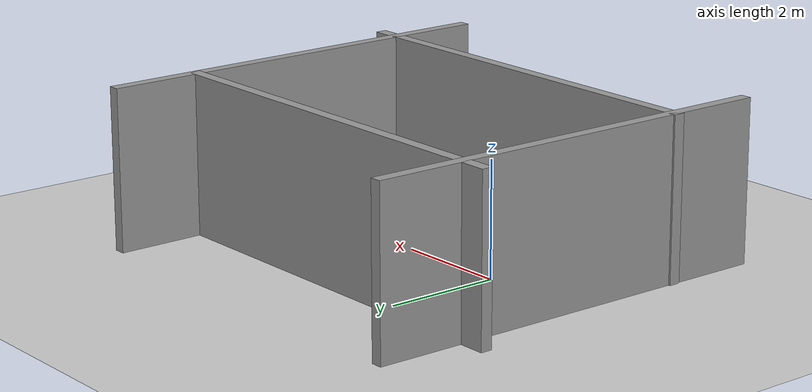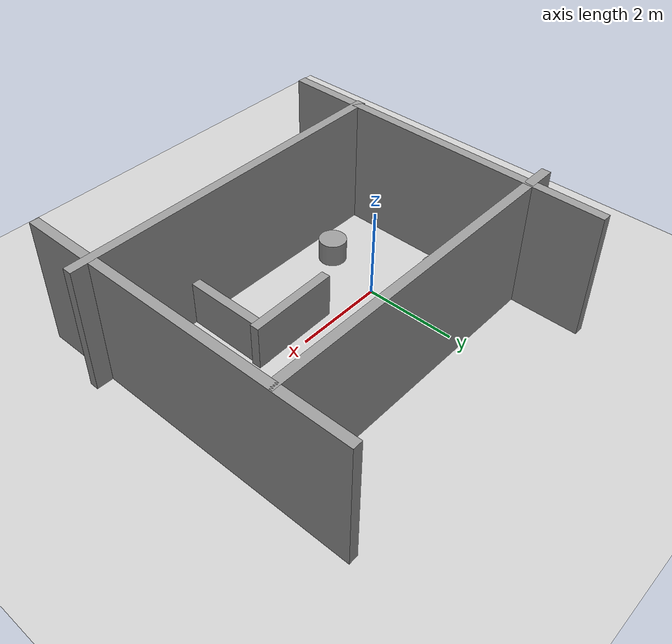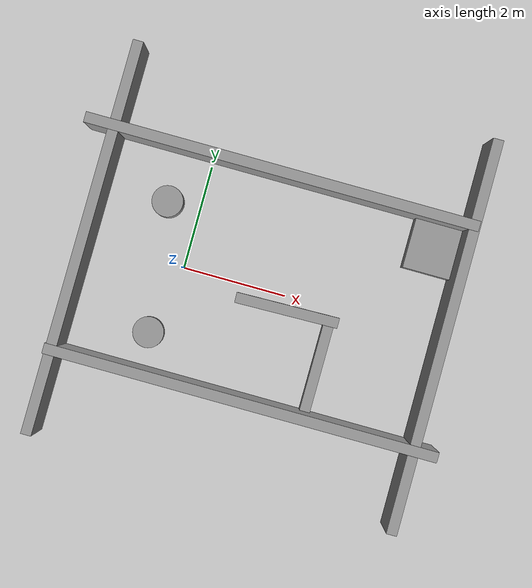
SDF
<sdf version="1.7">
 <world name="default">
  <light name="sun" type="directional">
   <pose>0 0 10 0 -0 0</pose>
   <diffuse>0.8 0.8 0.8 1</diffuse>
   <specular>0.2 0.2 0.2 1</specular>
   <attenuation>
    <range>1000</range>
    <constant>0.9</constant>
    <linear>0.01</linear>
    <quadratic>0.001</quadratic>
   </attenuation>
   <direction>-0.5 0.1 -0.9</direction>
   <spot><inner_angle>0</inner_angle><outer_angle>0</outer_angle><falloff>0</falloff></spot>
  </light>
  <model name="ground_plane">
   <static>1</static>
   <link name="link">
    <collision name="collision">
     <geometry><plane><normal>0 0 1</normal><size>100 100</size></plane></geometry>
     <surface>
      <contact><collide_bitmask>65535</collide_bitmask></contact>
      <friction><ode><mu>100</mu><mu2>50</mu2></ode></friction>
     </surface>
    </collision>
    <visual name="visual">
     <cast_shadows>0</cast_shadows>
     <geometry><plane><normal>0 0 1</normal><size>100 100</size></plane></geometry>
     <material>
      <script><uri>file://media/materials/scripts/gazebo.material</uri><name>Gazebo/Grey</name></script>
     </material>
    </visual>
   </link>
  </model>
  <gravity>0 0 -9.8</gravity>
  <magnetic_field>6e-06 2.3e-05 -4.2e-05</magnetic_field>
  <atmosphere type="adiabatic"/>
  <physics type="ode">
   <max_step_size>0.001</max_step_size>
   <real_time_factor>1</real_time_factor>
   <real_time_update_rate>1000</real_time_update_rate>
  </physics>
  <scene><ambient>0.4 0.4 0.4 1</ambient><background>0.7 0.7 0.7 1</background><shadows>1</shadows></scene>
  <spherical_coordinates>
   <surface_model>EARTH_WGS84</surface_model>
   <latitude_deg>0</latitude_deg>
   <longitude_deg>0</longitude_deg>
   <elevation>0</elevation>
   <heading_deg>0</heading_deg>
  </spherical_coordinates>
  <model name="grey_wall">
   <static>1</static>
   <link name="link">
    <pose>0 0 1.4 0 -0 0</pose>
    <collision name="collision"><geometry><box><size>7.5 0.2 2.8</size></box></geometry></collision>
    <visual name="visual">
     <cast_shadows>0</cast_shadows>
     <geometry><box><size>7.5 0.2 2.8</size></box></geometry>
     <material>
      <script>
       <uri>model://grey_wall/materials/scripts</uri>
       <uri>model://grey_wall/materials/textures</uri>
       <name>vrc/grey_wall</name>
      </script>
     </material>
    </visual>
   </link>
   <pose>1.72841 -2.10191 0 0 -0 0</pose>
  </model>
  <model name="grey_wall_0">
   <static>1</static>
   <link name="link">
    <pose>0 0 1.4 0 -0 0</pose>
    <collision name="collision"><geometry><box><size>7.5 0.2 2.8</size></box></geometry></collision>
    <visual name="visual">
     <cast_shadows>0</cast_shadows>
     <geometry><box><size>7.5 0.2 2.8</size></box></geometry>
     <material>
      <script>
       <uri>model://grey_wall/materials/scripts</uri>
       <uri>model://grey_wall/materials/textures</uri>
       <name>vrc/grey_wall</name>
      </script>
     </material>
    </visual>
   </link>
   <pose>1.32675 2.17894 0 0 -0 0</pose>
  </model>
  <model name="grey_wall_1">
   <static>1</static>
   <link name="link">
    <pose>0 0 1.4 0 -0 0</pose>
    <collision name="collision"><geometry><box><size>7.5 0.2 2.8</size></box></geometry></collision>
    <visual name="visual">
     <cast_shadows>0</cast_shadows>
     <geometry><box><size>7.5 0.2 2.8</size></box></geometry>
     <material>
      <script>
       <uri>model://grey_wall/materials/scripts</uri>
       <uri>model://grey_wall/materials/textures</uri>
       <name>vrc/grey_wall</name>
      </script>
     </material>
    </visual>
   </link>
   <pose>-1.87671 0.031138 0 0 0 -1.57759</pose>
  </model>
  <model name="grey_wall_2">
   <static>1</static>
   <link name="link">
    <pose>0 0 1.4 0 -0 0</pose>
    <collision name="collision"><geometry><box><size>7.5 0.2 2.8</size></box></geometry></collision>
    <visual name="visual">
     <cast_shadows>0</cast_shadows>
     <geometry><box><size>7.5 0.2 2.8</size></box></geometry>
     <material>
      <script>
       <uri>model://grey_wall/materials/scripts</uri>
       <uri>model://grey_wall/materials/textures</uri>
       <name>vrc/grey_wall</name>
      </script>
     </material>
    </visual>
   </link>
   <pose>5.01036 0.061297 0 0 0 -1.56431</pose>
  </model>
  <model name="unit_box">
   <pose>4.49071 1.62105 0.5 0 -0 0</pose>
   <link name="link">
    <inertial>
     <mass>1</mass>
     <inertia>
      <ixx>0.166667</ixx>
      <ixy>0</ixy>
      <ixz>0</ixz>
      <iyy>0.166667</iyy>
      <iyz>0</iyz>
      <izz>0.166667</izz>
     </inertia>
    </inertial>
    <collision name="collision"><geometry><box><size>1 1 1</size></box></geometry></collision>
    <visual name="visual">
     <geometry><box><size>1 1 1</size></box></geometry>
     <material>
      <script><name>Gazebo/Grey</name><uri>file://media/materials/scripts/gazebo.material</uri></script>
     </material>
    </visual>
   </link>
  </model>
  <model name="unit_box_0">
   <link name="link">
    <inertial>
     <mass>1</mass>
     <inertia>
      <ixx>0.166667</ixx>
      <ixy>0</ixy>
      <ixz>0</ixz>
      <iyy>0.166667</iyy>
      <iyz>0</iyz>
      <izz>0.166667</izz>
     </inertia>
    </inertial>
    <visual name="visual">
     <geometry><box><size>0.2 2 1</size></box></geometry>
     <material>
      <script><name>Gazebo/Grey</name><uri>file://media/materials/scripts/gazebo.material</uri></script>
      <shader type="pixel"><normal_map>__default__</normal_map></shader>
      <ambient>0.3 0.3 0.3 1</ambient>
      <diffuse>0.7 0.7 0.7 1</diffuse>
      <specular>0.01 0.01 0.01 1</specular>
      <emissive>0 0 0 1</emissive>
     </material>
    </visual>
    <collision name="collision">
     <geometry><box><size>0.2 2 1</size></box></geometry>
     <surface>
      <friction>
       <ode><mu>1</mu><mu2>1</mu2><fdir1>0 0 0</fdir1><slip1>0</slip1><slip2>0</slip2></ode>
       <torsional>
        <coefficient>1</coefficient>
        <patch_radius>0</patch_radius>
        <surface_radius>0</surface_radius>
        <use_patch_radius>1</use_patch_radius>
        <ode><slip>0</slip></ode>
       </torsional>
      </friction>
      <bounce><restitution_coefficient>0</restitution_coefficient><threshold>1e+06</threshold></bounce>
      <contact>
       <collide_without_contact>0</collide_without_contact>
       <collide_without_contact_bitmask>1</collide_without_contact_bitmask>
       <collide_bitmask>1</collide_bitmask>
       <ode>
        <soft_cfm>0</soft_cfm>
        <soft_erp>0.2</soft_erp>
        <kp>1e+13</kp>
        <kd>1</kd>
        <max_vel>0.01</max_vel>
        <min_depth>0</min_depth>
       </ode>
       <bullet>
        <split_impulse>1</split_impulse>
        <split_impulse_penetration_threshold>-0.01</split_impulse_penetration_threshold>
        <soft_cfm>0</soft_cfm>
        <soft_erp>0.2</soft_erp>
        <kp>1e+13</kp>
        <kd>1</kd>
       </bullet>
      </contact>
     </surface>
    </collision>
   </link>
   <static>0</static>
   <pose>2.93998 -1.15661 0.5 0 -0 0</pose>
  </model>
  <model name="unit_box_0_0">
   <link name="link">
    <inertial>
     <mass>1</mass>
     <inertia>
      <ixx>0.166667</ixx>
      <ixy>0</ixy>
      <ixz>0</ixz>
      <iyy>0.166667</iyy>
      <iyz>0</iyz>
      <izz>0.166667</izz>
     </inertia>
    </inertial>
    <visual name="visual">
     <geometry><box><size>0.2 2 1</size></box></geometry>
     <material>
      <script><name>Gazebo/Grey</name><uri>file://media/materials/scripts/gazebo.material</uri></script>
      <shader type="pixel"><normal_map>__default__</normal_map></shader>
      <ambient>0.3 0.3 0.3 1</ambient>
      <diffuse>0.7 0.7 0.7 1</diffuse>
      <specular>0.01 0.01 0.01 1</specular>
      <emissive>0 0 0 1</emissive>
     </material>
    </visual>
    <collision name="collision">
     <geometry><box><size>0.2 2 1</size></box></geometry>
     <surface>
      <friction>
       <ode><mu>1</mu><mu2>1</mu2><fdir1>0 0 0</fdir1><slip1>0</slip1><slip2>0</slip2></ode>
       <torsional>
        <coefficient>1</coefficient>
        <patch_radius>0</patch_radius>
        <surface_radius>0</surface_radius>
        <use_patch_radius>1</use_patch_radius>
        <ode><slip>0</slip></ode>
       </torsional>
      </friction>
      <bounce><restitution_coefficient>0</restitution_coefficient><threshold>1e+06</threshold></bounce>
      <contact>
       <collide_without_contact>0</collide_without_contact>
       <collide_without_contact_bitmask>1</collide_without_contact_bitmask>
       <collide_bitmask>1</collide_bitmask>
       <ode>
        <soft_cfm>0</soft_cfm>
        <soft_erp>0.2</soft_erp>
        <kp>1e+13</kp>
        <kd>1</kd>
        <max_vel>0.01</max_vel>
        <min_depth>0</min_depth>
       </ode>
       <bullet>
        <split_impulse>1</split_impulse>
        <split_impulse_penetration_threshold>-0.01</split_impulse_penetration_threshold>
        <soft_cfm>0</soft_cfm>
        <soft_erp>0.2</soft_erp>
        <kp>1e+13</kp>
        <kd>1</kd>
       </bullet>
      </contact>
     </surface>
    </collision>
   </link>
   <static>0</static>
   <pose>2.10891 -0.251127 0.536069 0 0 -1.54923</pose>
  </model>
  <model name="unit_cylinder">
   <link name="link">
    <inertial>
     <mass>1</mass>
     <inertia><ixx>0.145833</ixx><ixy>0</ixy><ixz>0</ixz><iyy>0.145833</iyy><iyz>0</iyz><izz>0.125</izz></inertia>
    </inertial>
    <visual name="visual">
     <geometry><cylinder><radius>0.3</radius><length>1</length></cylinder></geometry>
     <material>
      <script><name>Gazebo/Grey</name><uri>file://media/materials/scripts/gazebo.material</uri></script>
      <shader type="pixel"><normal_map>__default__</normal_map></shader>
      <ambient>0.3 0.3 0.3 1</ambient>
      <diffuse>0.7 0.7 0.7 1</diffuse>
      <specular>0.01 0.01 0.01 1</specular>
      <emissive>0 0 0 1</emissive>
     </material>
    </visual>
    <collision name="collision">
     <geometry><cylinder><radius>0.3</radius><length>1</length></cylinder></geometry>
     <surface>
      <friction>
       <ode><mu>1</mu><mu2>1</mu2><fdir1>0 0 0</fdir1><slip1>0</slip1><slip2>0</slip2></ode>
       <torsional>
        <coefficient>1</coefficient>
        <patch_radius>0</patch_radius>
        <surface_radius>0</surface_radius>
        <use_patch_radius>1</use_patch_radius>
        <ode><slip>0</slip></ode>
       </torsional>
      </friction>
      <bounce><restitution_coefficient>0</restitution_coefficient><threshold>1e+06</threshold></bounce>
      <contact>
       <collide_without_contact>0</collide_without_contact>
       <collide_without_contact_bitmask>1</collide_without_contact_bitmask>
       <collide_bitmask>1</collide_bitmask>
       <ode>
        <soft_cfm>0</soft_cfm>
        <soft_erp>0.2</soft_erp>
        <kp>1e+13</kp>
        <kd>1</kd>
        <max_vel>0.01</max_vel>
        <min_depth>0</min_depth>
       </ode>
       <bullet>
        <split_impulse>1</split_impulse>
        <split_impulse_penetration_threshold>-0.01</split_impulse_penetration_threshold>
        <soft_cfm>0</soft_cfm>
        <soft_erp>0.2</soft_erp>
        <kp>1e+13</kp>
        <kd>1</kd>
       </bullet>
      </contact>
     </surface>
    </collision>
   </link>
   <static>0</static>
   <pose>-0.616267 1.12722 0.5 0 -0 0</pose>
  </model>
  <model name="unit_cylinder_0">
   <link name="link">
    <inertial>
     <mass>1</mass>
     <inertia><ixx>0.145833</ixx><ixy>0</ixy><ixz>0</ixz><iyy>0.145833</iyy><iyz>0</iyz><izz>0.125</izz></inertia>
    </inertial>
    <visual name="visual">
     <geometry><cylinder><radius>0.3</radius><length>1</length></cylinder></geometry>
     <material>
      <script><name>Gazebo/Grey</name><uri>file://media/materials/scripts/gazebo.material</uri></script>
      <shader type="pixel"><normal_map>__default__</normal_map></shader>
      <ambient>0.3 0.3 0.3 1</ambient>
      <diffuse>0.7 0.7 0.7 1</diffuse>
      <specular>0.01 0.01 0.01 1</specular>
      <emissive>0 0 0 1</emissive>
     </material>
    </visual>
    <collision name="collision">
     <geometry><cylinder><radius>0.3</radius><length>1</length></cylinder></geometry>
     <surface>
      <friction>
       <ode><mu>1</mu><mu2>1</mu2><fdir1>0 0 0</fdir1><slip1>0</slip1><slip2>0</slip2></ode>
       <torsional>
        <coefficient>1</coefficient>
        <patch_radius>0</patch_radius>
        <surface_radius>0</surface_radius>
        <use_patch_radius>1</use_patch_radius>
        <ode><slip>0</slip></ode>
       </torsional>
      </friction>
      <bounce><restitution_coefficient>0</restitution_coefficient><threshold>1e+06</threshold></bounce>
      <contact>
       <collide_without_contact>0</collide_without_contact>
       <collide_without_contact_bitmask>1</collide_without_contact_bitmask>
       <collide_bitmask>1</collide_bitmask>
       <ode>
        <soft_cfm>0</soft_cfm>
        <soft_erp>0.2</soft_erp>
        <kp>1e+13</kp>
        <kd>1</kd>
        <max_vel>0.01</max_vel>
        <min_depth>0</min_depth>
       </ode>
       <bullet>
        <split_impulse>1</split_impulse>
        <split_impulse_penetration_threshold>-0.01</split_impulse_penetration_threshold>
        <soft_cfm>0</soft_cfm>
        <soft_erp>0.2</soft_erp>
        <kp>1e+13</kp>
        <kd>1</kd>
       </bullet>
      </contact>
     </surface>
    </collision>
   </link>
   <static>0</static>
   <pose>-0.320522 -1.36346 0 0 -0 0</pose>
  </model>
 </world>
</sdf>
